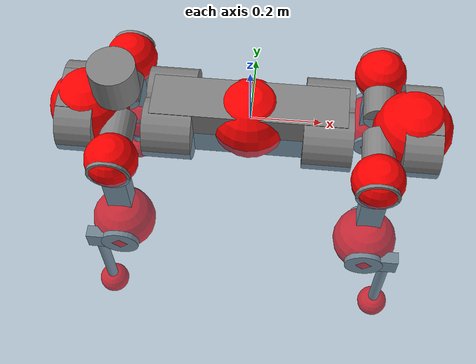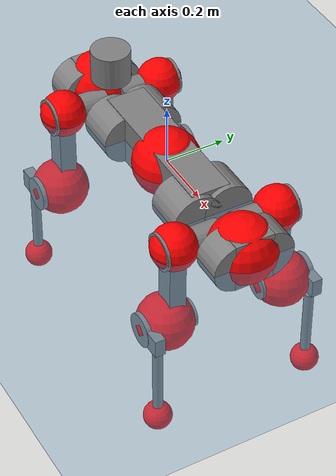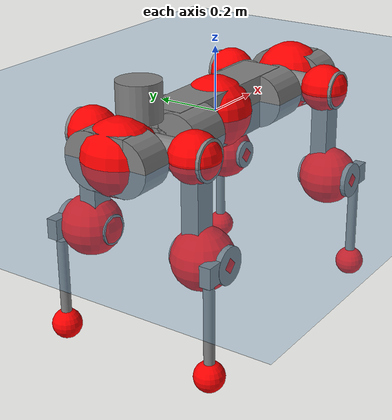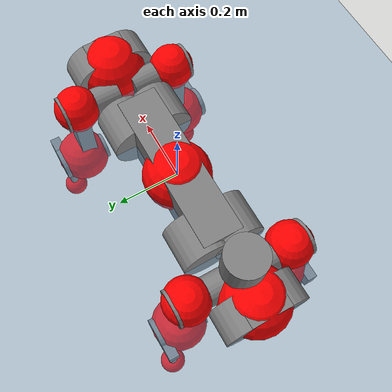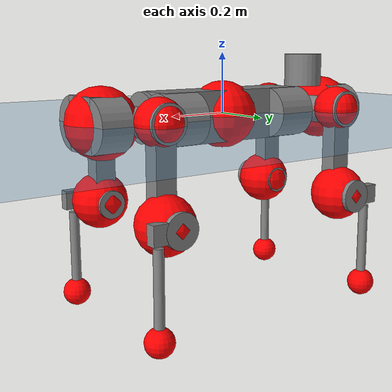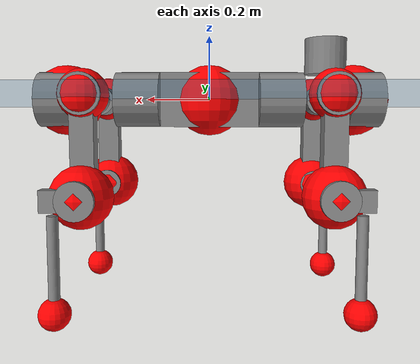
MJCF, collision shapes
<mujoco model="anymal_c">
  <compiler angle="radian" assetdir="assets" balanceinertia="true" inertiafromgeom="false"/>

  <option timestep="0.005" density="1.2" viscosity="2e-05"/>

  <size nkey="1"/>

  <visual>
    <quality shadowsize="8192"/>
    <map shadowclip="0.5"/>
  </visual>

  <default>
    <default class="/">
      <material specular="0" shininess="0.25"/>
      <geom contype="0" conaffinity="0" group="1" solref="-1000 -80"/>
      <site size="0.01 0.005 0.005" group="5"/>
      <general forcelimited="true" forcerange="-80 80" biastype="affine" gainprm="80" biasprm="0 -80 -2"/>
      <default class="anymal_c">
        <joint armature="0.01" damping="0.01" frictionloss="0.1"/>
        <default class="visual">
          <geom type="mesh" group="2"/>
          <default class="visual_zflip"/>
        </default>
        <default class="collision">
          <geom type="cylinder" group="3"/>
          <default class="foot">
            <geom size="0.03 0 0" type="sphere" condim="6" priority="1" friction="0.8 0.02 0.01" solimp="0.015 1 0.03"/>
          </default>
        </default>
      </default>
      <default class="reward_collision_sphere">
        <geom group="5" rgba="1 0 0 1"/>
      </default>
    </default>
  </default>

  <asset>
    <texture type="skybox" colorspace="auto" name="//unnamed_texture_0" builtin="gradient" rgb1="0.95 0.95 0.95" rgb2="0.95 0.95 0.95" width="100" height="600"/>
    <texture type="2d" colorspace="auto" name="texplane" builtin="checker" rgb1="0.345 0.575 0.748" rgb2="0.345 0.575 0.748" markrgb="1 1 1" width="512" height="512"/>
    <texture type="2d" colorspace="linear" name="base" file="base.png"/>
    <texture type="2d" colorspace="linear" name="top_shell" file="top_shell.png"/>
    <texture type="2d" colorspace="linear" name="bottom_shell" file="bottom_shell.png"/>
    <texture type="2d" colorspace="linear" name="remote" file="remote.png"/>
    <texture type="2d" colorspace="linear" name="hatch" file="hatch.png"/>
    <texture type="2d" colorspace="linear" name="handle" file="handle.png"/>
    <texture type="2d" colorspace="linear" name="face" file="face.png"/>
    <texture type="2d" colorspace="linear" name="battery" file="battery.png"/>
    <texture type="2d" colorspace="linear" name="lidar_cage" file="lidar_cage.png"/>
    <texture type="2d" colorspace="linear" name="depth_camera" file="depth_camera.png"/>
    <texture type="2d" colorspace="linear" name="wide_angle_camera" file="wide_angle_camera.png"/>
    <texture type="2d" colorspace="linear" name="lidar" file="lidar.png"/>
    <texture type="2d" colorspace="linear" name="drive" file="drive.png"/>
    <texture type="2d" colorspace="linear" name="hip_l" file="hip_l.png"/>
    <texture type="2d" colorspace="linear" name="shank_l" file="shank_l.png"/>
    <texture type="2d" colorspace="linear" name="foot" file="foot.png"/>
    <texture type="2d" colorspace="linear" name="thigh" file="thigh.png"/>
    <texture type="2d" colorspace="linear" name="shank_r" file="shank_r.png"/>
    <texture type="2d" colorspace="linear" name="hip_r" file="hip_r.png"/>
    <material name="MatPlane" class="/" texture="texplane" texuniform="true" texrepeat="2 2" specular="0.9" shininess="0.5"/>
    <material name="black_plastic" class="/" rgba="0.007 0.007 0.007 1"/>
    <material name="green" class="/" rgba="0.052 0.178 0.033 1"/>
    <material name="red" class="/" rgba="0.178 0.006 0.005 1"/>
    <material name="yellow" class="/" rgba="0.178 0.119 0.006 1"/>
    <material name="lwl" class="/" rgba="0.8 0.8 0.8 1"/>
    <material name="base" class="/" texture="base"/>
    <material name="top_shell" class="/" texture="top_shell"/>
    <material name="bottom_shell" class="/" texture="bottom_shell"/>
    <material name="hip_l" class="/" texture="hip_l"/>
    <material name="thigh" class="/" texture="thigh"/>
    <material name="shank_l" class="/" texture="shank_l"/>
    <material name="foot" class="/" texture="foot"/>
    <material name="hip_r" class="/" texture="hip_r"/>
    <material name="shank" class="/" texture="shank_r"/>
    <material name="hatch" class="/" texture="hatch"/>
    <material name="remote" class="/" texture="remote"/>
    <material name="handle" class="/" texture="handle"/>
    <material name="face" class="/" texture="face"/>
    <material name="depth_camera" class="/" texture="depth_camera"/>
    <material name="wide_angle_camera" class="/" texture="wide_angle_camera"/>
    <material name="battery" class="/" texture="battery"/>
    <material name="lidar_cage" class="/" texture="lidar_cage"/>
    <material name="lidar" class="/" texture="lidar"/>
    <material name="drive" class="/" texture="drive"/>
    <mesh name="base_0" class="/" file="base_0.obj"/>
    <mesh name="base_1" class="/" file="base_1.obj"/>
    <mesh name="base_2" class="/" file="base_2.obj"/>
    <mesh name="base_3" class="/" file="base_3.obj"/>
    <mesh name="base_4" class="/" file="base_4.obj"/>
    <mesh name="base_5" class="/" file="base_5.obj"/>
    <mesh name="top_shell" class="/" file="top_shell.obj"/>
    <mesh name="bottom_shell" class="/" file="bottom_shell.obj"/>
    <mesh name="remote" class="/" file="remote.obj"/>
    <mesh name="handle" class="/" file="handle.obj"/>
    <mesh name="face" class="/" file="face.obj"/>
    <mesh name="wide_angle_camera" class="/" file="wide_angle_camera.obj"/>
    <mesh name="depth_camera" class="/" file="depth_camera.obj"/>
    <mesh name="battery" class="/" file="battery.obj"/>
    <mesh name="lidar_cage" class="/" file="lidar_cage.obj"/>
    <mesh name="lidar" class="/" file="lidar.obj"/>
    <mesh name="drive" class="/" file="drive.obj"/>
    <mesh name="hip_l" class="/" file="hip_l.obj"/>
    <mesh name="thigh" class="/" file="thigh.obj"/>
    <mesh name="shank_l" class="/" file="shank_l.obj"/>
    <mesh name="foot" class="/" file="foot.obj"/>
    <mesh name="hip_r" class="/" file="hip_r.obj"/>
    <mesh name="hatch" class="/" file="hatch.obj"/>
    <mesh name="shank_r" class="/" file="shank_r.obj"/>
  </asset>

  <worldbody>
    <geom name="floor" class="/" size="100 100 0.125" type="plane" group="0" material="MatPlane"/>
    <light name="toplight_shadow" class="/" pos="0 0 5" dir="0.0990148 0.0990148 -0.990148" type="directional" ambient="0.04 0.04 0.04" diffuse="0.55 0.55 0.55" specular="0.12 0.12 0.12"/>
    <light name="toplight_fill" class="/" pos="0 0 5" dir="0.0990148 0.0990148 -0.990148" type="directional" castshadow="false" ambient="0.04 0.04 0.04" diffuse="0.3 0.3 0.3" specular="0.08 0.08 0.08"/>
    <body name="trunk" childclass="anymal_c" pos="-0.000723016 0.000328201 -0.00258906" quat="1 -0.000359682 -0.000290384 -7.46502e-05">
      <inertial pos="-0.000445217 -0.0028983 0.0509989" quat="0.500084 0.500003 0.500018 0.499895" mass="15.7024" diaginertia="0.702019 0.158664 0.265786"/>
      <joint name="//unnamed_joint_0" type="free" armature="0" damping="0" frictionloss="0"/>
      <geom name="//unnamed_geom_1" class="visual" material="green" mesh="base_0"/>
      <geom name="//unnamed_geom_2" class="visual" material="yellow" mesh="base_1"/>
      <geom name="//unnamed_geom_3" class="visual" material="red" mesh="base_2"/>
      <geom name="//unnamed_geom_4" class="visual" material="black_plastic" mesh="base_3"/>
      <geom name="//unnamed_geom_5" class="visual" material="lwl" mesh="base_4"/>
      <geom name="//unnamed_geom_6" class="visual" material="base" mesh="base_5"/>
      <geom name="trunk_1" class="collision" size="0.270366 0.0652608 0.0839068" type="box"/>
      <geom name="trunk_2" class="collision" size="0.0839068 0.0675916" pos="0.219816 0.0528862 0" quat="0.707107 0 0.707107 0"/>
      <geom name="trunk_3" class="collision" size="0.0839068 0.0675916" pos="-0.219816 0.0528862 0" quat="0.707107 0 0.707107 0"/>
      <geom name="trunk_4" class="collision" size="0.0839068 0.0675916" pos="0.219816 -0.0528862 0" quat="0.707107 0 0.707107 0"/>
      <geom name="trunk_5" class="collision" size="0.0839068 0.0675916" pos="-0.219816 -0.0528862 0" quat="0.707107 0 0.707107 0"/>
      <geom name="//unnamed_geom_12" class="visual" material="top_shell" mesh="top_shell"/>
      <geom name="//unnamed_geom_13" class="visual" material="bottom_shell" mesh="bottom_shell"/>
      <geom name="//unnamed_geom_14" class="visual" material="remote" mesh="remote"/>
      <geom name="//unnamed_geom_15" class="visual" material="handle" mesh="handle"/>
      <geom name="//unnamed_geom_16" class="visual" pos="0.418913 0 0" quat="1 0 0 0" material="face" mesh="face"/>
      <geom name="trunk_6" class="collision" size="0.0512764 0.0652608 0.0839068" pos="0.474499 0 0" type="box"/>
      <geom name="//unnamed_geom_18" class="collision" size="0.0839068 0.0512764" pos="0.474499 0.0528862 0" quat="0.707107 0 0.707107 0"/>
      <geom name="//unnamed_geom_19" class="collision" size="0.0839068 0.0512764" pos="0.474499 -0.0528862 0" quat="0.707107 0 0.707107 0"/>
      <geom name="//unnamed_geom_20" class="visual" pos="0.466566 0 -0.0302499" quat="0.965926 0 0.258819 0" material="depth_camera" mesh="depth_camera"/>
      <geom name="//unnamed_geom_21" class="visual" pos="0.518462 0 0.01543" material="wide_angle_camera" mesh="wide_angle_camera"/>
      <geom name="//unnamed_geom_22" class="visual_zflip" pos="-0.418913 0 0" quat="0 0 0 1" material="face" mesh="face"/>
      <geom name="trunk_7" class="collision" size="0.0512764 0.0652608 0.0839068" pos="-0.474499 0 0" quat="0 0 0 1" type="box"/>
      <geom name="//unnamed_geom_24" class="collision" size="0.0839068 0.0512764" pos="-0.474499 -0.0528862 0" quat="0 -0.707107 0 0.707107"/>
      <geom name="//unnamed_geom_25" class="collision" size="0.0839068 0.0512764" pos="-0.474499 0.0528862 0" quat="0 -0.707107 0 0.707107"/>
      <geom name="//unnamed_geom_26" class="visual" pos="-0.466566 0 -0.0302499" quat="0 -0.258819 0 0.965926" material="depth_camera" mesh="depth_camera"/>
      <geom name="//unnamed_geom_27" class="visual_zflip" pos="-0.518462 0 0.01543" quat="0 0 0 1" material="wide_angle_camera" mesh="wide_angle_camera"/>
      <geom name="//unnamed_geom_28" class="visual" material="battery" mesh="battery"/>
      <geom name="//unnamed_geom_29" class="visual" pos="0 0.0544199 0.02979" quat="0.683013 -0.183013 0.183013 0.683013" material="depth_camera" mesh="depth_camera"/>
      <geom name="//unnamed_geom_30" class="visual" pos="0 -0.0544199 0.02979" quat="0.683013 0.183013 0.183013 -0.683013" material="depth_camera" mesh="depth_camera"/>
      <geom name="//unnamed_geom_31" class="visual" pos="-0.367875 0 0.0757585" quat="1 0 0 0" material="lidar_cage" mesh="lidar_cage"/>
      <geom name="trunk_8" class="collision" size="0.0652608 0.0559379" pos="-0.367875 0 0.137602"/>
      <geom name="//unnamed_geom_33" class="visual" pos="-0.367875 -0.000100234 0.14657" quat="0.707107 0 0 -0.707107" material="lidar" mesh="lidar"/>
      <geom name="//unnamed_geom_34" class="visual" pos="0.303093 0.0786716 -4.74742e-09" quat="0.258819 0.965926 0 0" material="drive" mesh="drive"/>
      <geom name="//unnamed_geom_35" class="visual" pos="0.303093 -0.0786716 4.74742e-09" quat="0.258819 -0.965926 0 0" material="drive" mesh="drive"/>
      <geom name="//unnamed_geom_36" class="visual" pos="-0.303093 0.0786716 4.74742e-09" quat="0 0 0.965926 -0.258819" material="drive" mesh="drive"/>
      <geom name="//unnamed_geom_37" class="visual" pos="-0.303093 -0.0786716 -4.74742e-09" quat="0 0 -0.965926 -0.258819" material="drive" mesh="drive"/>
      <geom name="//unnamed_geom_38" class="visual" pos="0.117235 0 0.0752432" quat="1 0 0 0" material="hatch" mesh="hatch"/>
      <geom name="//unnamed_geom_39" class="reward_collision_sphere" size="0.111876"/>
      <geom name="//unnamed_geom_40" class="reward_collision_sphere" size="0.111876" pos="0.454791 0 0"/>
      <geom name="//unnamed_geom_41" class="reward_collision_sphere" size="0.111876" pos="-0.454791 0 0"/>
      <site name="imu" pos="0.240075 0.0116209 0.0614895" size="0.00932298"/>
      <camera name="track" pos="0 -1.51103 0" quat="0.707107 0.707107 0 0" mode="trackcom"/>
      <camera name="ego_camera" pos="0.454791 0 -0.0412291" quat="-0.5 -0.5 0.5 0.5"/>
      <body name="LF_HIP" pos="0.302563 0.0795578 0.00039171" quat="0.259663 0.965699 0.000169466 -0.000127248">
        <inertial pos="0.0600218 -0.0128231 -0.0078243" quat="-0.120505 0.710731 -0.143007 0.678151" mass="2.17558" diaginertia="0.00596774 0.00120155 0.00383082"/>
        <joint name="LF_HAA" pos="0 0 0" axis="0.999865 -0.0149244 0.00693692" range="-0.710705 0.525091" armature="0.0105011" damping="0.000264705" frictionloss="0.0978882"/>
        <geom name="//unnamed_geom_42" class="visual" pos="0 -0.000279269 4.58698e-05" quat="0.258819 -0.965926 0 0" material="hip_l" mesh="hip_l"/>
        <geom name="//unnamed_geom_43" class="visual" pos="0.0605378 -0.070093 -0.0425038" quat="0.183013 -0.683013 0.683013 0.183013" material="drive" mesh="drive"/>
        <geom name="//unnamed_geom_44" class="collision" size="0.0466149 0.0652608" pos="0.0605378 -0.00903584 -0.00711718" quat="-0.353553 -0.612372 0.612372 -0.353553"/>
        <body name="LF_THIGH" pos="0.0606216 -0.0546048 -0.0446946" quat="0.182547 -0.683285 0.682917 0.182821">
          <inertial pos="0.0327063 0.000348912 -0.250526" quat="0.993088 -0.00574222 -0.0820667 0.0837166" mass="2.54897" diaginertia="0.0307198 0.00733835 0.00491381"/>
          <joint name="LF_HFE" pos="0 0 0" axis="0.999893 -0.0145572 -0.00109143" range="-3.13768 3.11778" armature="0.00887445" damping="0.00888151" frictionloss="0.0804212"/>
          <geom name="//unnamed_geom_45" class="visual" pos="0.00507608 7.99871e-06 0" quat="0.707107 0 0 -0.707107" material="thigh" mesh="thigh"/>
          <geom name="//unnamed_geom_46" class="collision" size="0.0605993 0.0372919" pos="0.0404259 0 0" quat="0.5 0.5 -0.5 -0.5"/>
          <geom name="//unnamed_geom_47" class="collision" size="0.0349612 0.0279689 0.131747" pos="0.0303194 0 -0.145656" quat="0.707107 0 0 -0.707107" type="box"/>
          <geom name="//unnamed_geom_48" class="visual" pos="0.101368 0 -0.293758" quat="1 0 0 0" material="drive" mesh="drive"/>
          <geom name="//unnamed_geom_49" class="collision" size="0.0466149 0.0652608" pos="0.0306226 0 -0.293758" quat="0.707107 0 0.707107 0"/>
          <geom name="//unnamed_geom_50" class="reward_collision_sphere" size="0.0745838" pos="0.0252662 0 0"/>
          <body name="LF_SHANK" pos="0.104799 -0.00335272 -0.296344" quat="0.999999 -0.00101659 0.000121014 0.00102881">
            <inertial pos="0.0062614 -0.0461435 -0.0825846" quat="0.992871 -0.116781 -0.00256591 -0.0237265" mass="0.464808" diaginertia="0.0104448 0.00226123 0.00128409"/>
            <joint name="LF_KFE" pos="0 0 0" axis="0.999999 0.000253575 0.00123698" range="-3.19053 3.15116" armature="0.010122" damping="0" frictionloss="0.104159"/>
            <geom name="//unnamed_geom_51" class="visual" pos="0.0016552 0.0088256 0" quat="0.707107 0 0 -0.707107" material="shank_l" mesh="shank_l"/>
            <geom name="LF_kfe_act" class="collision" size="0.0559379 0.018646" pos="0.0202129 0 0" quat="0.5 0.5 -0.5 -0.5"/>
            <geom name="//unnamed_geom_53" class="collision" size="0.0536062 0.031465 0.0177137" pos="0.0202129 -0.0434415 0" quat="0.5 0.5 -0.5 -0.5" type="box"/>
            <geom name="//unnamed_geom_54" class="visual" pos="0.0131885 -0.0636036 -0.348355" quat="0.382683 0 0 -0.92388" material="foot" mesh="foot"/>
            <geom name="LF_calf" class="collision" size="0.0163152 0.131689" pos="0.0131889 -0.0664477 -0.174178" quat="0.707107 0 0 -0.707107"/>
            <geom name="LF_foot" class="foot" size="0.0286882" pos="0.0131889 -0.0664477 -0.325164" quat="0.707107 0 0 -0.707107"/>
            <geom name="//unnamed_geom_57" class="reward_collision_sphere" size="0.0932298" pos="-0.0505323 0 0"/>
            <geom name="//unnamed_geom_58" class="reward_collision_sphere" size="0.0466149" pos="0.0131889 -0.0664477 -0.325164"/>
            <site name="LF_foot" class="foot" pos="0.0131889 -0.0664477 -0.325164" quat="0.707107 0 0 -0.707107" size="0.00932298"/>
          </body>
        </body>
      </body>
      <body name="RF_HIP" pos="0.301475 -0.0801681 -0.000871091" quat="0.258812 -0.965928 -1.84981e-06 9.74614e-06">
        <inertial pos="0.0601426 0.0129512 -0.00932209" quat="0.137833 0.679291 0.127534 0.709437" mass="2.33345" diaginertia="0.00626108 0.00127754 0.00393785"/>
        <joint name="RF_HAA" pos="0 0 0" axis="0.999988 -0.00459761 0.00138494" range="-0.545994 0.702066" armature="0.00807722" damping="0.00789355" frictionloss="0.0804421"/>
        <geom name="//unnamed_geom_59" class="visual" pos="0 0.000279267 4.58696e-05" quat="0.258819 0.965926 0 0" material="hip_r" mesh="hip_r"/>
        <geom name="//unnamed_geom_60" class="visual" pos="0.0605377 0.070093 -0.0425038" quat="0.183013 0.683013 0.683013 -0.183013" material="drive" mesh="drive"/>
        <geom name="//unnamed_geom_61" class="collision" size="0.0466149 0.0652608" pos="0.0605378 0.00903584 -0.00711718" quat="-0.353553 0.612372 0.612372 0.353553"/>
        <body name="RF_THIGH" pos="0.0599091 0.0576095 -0.0452701" quat="0.183341 0.682944 0.683011 -0.18295">
          <inertial pos="0.0314685 -0.00116652 -0.252063" quat="0.99316 0.00823837 -0.0769807 0.087407" mass="2.32564" diaginertia="0.030497 0.0073145 0.00478112"/>
          <joint name="RF_HFE" pos="0 0 0" axis="0.999949 -0.0101068 -2.35391e-05" stiffness="0.0051973" range="-3.09628 3.19082" armature="0.00934521" damping="0" frictionloss="0.102101"/>
          <geom name="//unnamed_geom_62" class="visual" pos="0.00507608 7.99871e-06 0" quat="0.707107 0 0 -0.707107" material="thigh" mesh="thigh"/>
          <geom name="//unnamed_geom_63" class="collision" size="0.0605993 0.0372919" pos="0.0404259 0 0" quat="0.5 0.5 0.5 0.5"/>
          <geom name="//unnamed_geom_64" class="collision" size="0.0349612 0.0279689 0.131747" pos="0.0303194 0 -0.145656" quat="0.707107 0 0 0.707107" type="box"/>
          <geom name="//unnamed_geom_65" class="visual" pos="0.101368 0 -0.293758" quat="1 0 0 0" material="drive" mesh="drive"/>
          <geom name="//unnamed_geom_66" class="collision" size="0.0466149 0.0652608" pos="0.0306226 0 -0.293758" quat="0.707107 0 0.707107 0"/>
          <geom name="//unnamed_geom_67" class="reward_collision_sphere" size="0.0745838" pos="0.0252662 0 0"/>
          <body name="RF_SHANK" pos="0.103548 -0.00219547 -0.2927" quat="1 -0.000154609 -0.000170489 7.40912e-05">
            <inertial pos="0.00545104 0.0464669 -0.080295" quat="0.992268 0.119941 0.00665982 0.0312217" mass="0.484223" diaginertia="0.0104202 0.00219919 0.00130202"/>
            <joint name="RF_KFE" pos="0 0 0" axis="0.999995 -0.00258852 -0.00163663" range="-3.17293 3.1821" armature="0.00929897" damping="0.00314471" frictionloss="0.0817772"/>
            <geom name="//unnamed_geom_68" class="visual" pos="0.00165519 -0.00882558 0" quat="0.707107 0 0 0.707107" material="shank" mesh="shank_r"/>
            <geom name="RF_kfe_act" class="collision" size="0.0559379 0.018646" pos="0.0202129 0 0" quat="0.5 0.5 0.5 0.5"/>
            <geom name="//unnamed_geom_70" class="collision" size="0.0536062 0.031465 0.0177137" pos="0.0202129 0.0434415 0" quat="0.5 0.5 0.5 0.5" type="box"/>
            <geom name="//unnamed_geom_71" class="visual" pos="0.0131893 0.0636036 -0.348355" quat="0.382683 0 0 0.92388" material="foot" mesh="foot"/>
            <geom name="RF_calf" class="collision" size="0.0163152 0.131689" pos="0.0131889 0.0664477 -0.174178" quat="0.707107 0 0 0.707107"/>
            <geom name="RF_foot" class="foot" size="0.026739" pos="0.0131889 0.0664477 -0.325164" quat="0.707107 0 0 0.707107"/>
            <geom name="//unnamed_geom_74" class="reward_collision_sphere" size="0.0932298" pos="-0.0505323 0 0"/>
            <geom name="//unnamed_geom_75" class="reward_collision_sphere" size="0.0466149" pos="0.0131889 0.0664477 -0.325164"/>
            <site name="RF_foot" class="foot" pos="0.0131889 0.0664477 -0.325164" quat="0.707107 0 0 0.707107" size="0.00932298"/>
          </body>
        </body>
      </body>
      <body name="LH_HIP" pos="-0.305107 0.0799593 0.000555536" quat="-9.84671e-05 7.33959e-05 0.965939 -0.258768">
        <inertial pos="0.0586777 0.0139934 -0.00876191" quat="0.128211 0.678924 0.119708 0.712948" mass="2.24834" diaginertia="0.00593628 0.00120416 0.00356665"/>
        <joint name="LH_HAA" pos="0 0 0" axis="0.999993 -0.00154663 -0.00349058" range="-0.484332 0.684758" armature="0.00791126" damping="0.00159606" frictionloss="0.0928131"/>
        <geom name="//unnamed_geom_76" class="visual" pos="0 0.000279267 4.58696e-05" quat="-0.258819 -0.965926 0 0" material="hip_r" mesh="hip_r"/>
        <geom name="//unnamed_geom_77" class="visual" pos="0.0605377 0.070093 -0.0425038" quat="0.183013 0.683013 0.683013 -0.183013" material="drive" mesh="drive"/>
        <geom name="//unnamed_geom_78" class="collision" size="0.0466149 0.0652608" pos="0.0605378 0.00903584 -0.00711718" quat="-0.353553 0.612372 0.612372 0.353553"/>
        <body name="LH_THIGH" pos="0.0573329 0.052643 -0.0434139" quat="0.182998 0.683066 0.682995 -0.182897">
          <inertial pos="0.0311697 0.00267556 -0.251931" quat="0.992626 -0.00612527 -0.0833987 0.0877512" mass="2.47712" diaginertia="0.031779 0.00713552 0.00485006"/>
          <joint name="LH_HFE" pos="0 0 0" axis="0.999926 -0.000152237 -0.0121784" stiffness="0.00609441" range="-3.14023 3.1578" armature="0.00854819" damping="0.00201292" frictionloss="0.0951315"/>
          <geom name="//unnamed_geom_79" class="visual" pos="0.00507608 7.99871e-06 0" quat="0.707107 0 0 -0.707107" material="thigh" mesh="thigh"/>
          <geom name="//unnamed_geom_80" class="collision" size="0.0605993 0.0372919" pos="0.0404259 0 0" quat="0.5 0.5 -0.5 -0.5"/>
          <geom name="//unnamed_geom_81" class="collision" size="0.0349612 0.0279689 0.131747" pos="0.0303194 0 -0.145656" quat="0.707107 0 0 -0.707107" type="box"/>
          <geom name="//unnamed_geom_82" class="visual" pos="0.101368 0 -0.293758" quat="1 0 0 0" material="drive" mesh="drive"/>
          <geom name="//unnamed_geom_83" class="collision" size="0.0466149 0.0652608" pos="0.0306226 0 -0.293758" quat="0.707107 0 0.707107 0"/>
          <geom name="//unnamed_geom_84" class="reward_collision_sphere" size="0.0745838" pos="0.0252662 0 0"/>
          <body name="LH_SHANK" pos="0.0986178 -0.000654123 -0.294956" quat="1 0.000519513 0.000384515 -1.32803e-05">
            <inertial pos="0.00561617 0.0459794 -0.0834441" quat="0.992789 0.118625 0.00305598 0.016974" mass="0.478527" diaginertia="0.0106887 0.00225005 0.0012681"/>
            <joint name="LH_KFE" pos="0 0 0" axis="0.999777 0.0175929 -0.01166" range="-3.15607 3.13826" armature="0.00814356" damping="0.00587777" frictionloss="0.104624"/>
            <geom name="//unnamed_geom_85" class="visual" pos="0.00165519 -0.00882558 0" quat="-0.707107 0 0 -0.707107" material="shank" mesh="shank_r"/>
            <geom name="LH_kfe_act" class="collision" size="0.0559379 0.018646" pos="0.0202129 0 0" quat="0.5 0.5 -0.5 -0.5"/>
            <geom name="//unnamed_geom_87" class="collision" size="0.0536062 0.031465 0.0177137" pos="0.0202129 0.0434415 0" quat="0.5 0.5 -0.5 -0.5" type="box"/>
            <geom name="//unnamed_geom_88" class="visual" pos="0.0131893 0.0636036 -0.348355" quat="-0.382683 0 0 -0.92388" material="foot" mesh="foot"/>
            <geom name="LH_calf" class="collision" size="0.0163152 0.131689" pos="0.0131889 0.0664477 -0.174178" quat="0.707107 0 0 -0.707107"/>
            <geom name="LH_foot" class="foot" size="0.0326001" pos="0.0131889 0.0664477 -0.325164" quat="0.707107 0 0 -0.707107"/>
            <geom name="//unnamed_geom_91" class="reward_collision_sphere" size="0.0932298" pos="-0.0505323 0 0"/>
            <geom name="//unnamed_geom_92" class="reward_collision_sphere" size="0.0466149" pos="0.0131889 0.0664477 -0.325164"/>
            <site name="LH_foot" class="foot" pos="0.0131889 0.0664477 -0.325164" quat="0.707107 0 0 -0.707107" size="0.00932298"/>
          </body>
        </body>
      </body>
      <body name="RH_HIP" pos="-0.302837 -0.0817086 -0.000490023" quat="0.000269021 -0.000232534 -0.96626 -0.257568">
        <inertial pos="0.0546218 -0.0121759 -0.00600443" quat="-0.129698 0.709615 -0.135362 0.679192" mass="2.20724" diaginertia="0.00606716 0.00118458 0.00363547"/>
        <joint name="RH_HAA" pos="0 0 0" axis="0.999998 -0.000705075 0.00188658" range="-0.779532 0.539846" armature="0.00926503" damping="0" frictionloss="0.0928116"/>
        <geom name="//unnamed_geom_93" class="visual" pos="0 -0.000279269 4.58698e-05" quat="-0.258819 0.965926 0 0" material="hip_l" mesh="hip_l"/>
        <geom name="//unnamed_geom_94" class="visual" pos="0.0605378 -0.070093 -0.0425038" quat="-0.183013 0.683013 -0.683013 -0.183013" material="drive" mesh="drive"/>
        <geom name="//unnamed_geom_95" class="collision" size="0.0466149 0.0652608" pos="0.0605378 -0.00903584 -0.00711718" quat="0.353553 0.612372 -0.612372 0.353553"/>
        <body name="RH_THIGH" pos="0.0598039 -0.0562376 -0.0416105" quat="-0.183328 0.683024 -0.682982 -0.18277">
          <inertial pos="0.0341844 0.00062009 -0.254119" quat="0.993158 -0.00510311 -0.0806981 0.0842515" mass="2.35088" diaginertia="0.0299848 0.0071896 0.00469416"/>
          <joint name="RH_HFE" pos="0 0 0" axis="0.999939 -0.0104438 0.00359254" stiffness="0.00224451" range="-3.14661 3.14386" armature="0.00891243" damping="0.00563117" frictionloss="0.0935675"/>
          <geom name="//unnamed_geom_96" class="visual" pos="0.00507608 7.99871e-06 0" quat="0.707107 0 0 -0.707107" material="thigh" mesh="thigh"/>
          <geom name="//unnamed_geom_97" class="collision" size="0.0605993 0.0372919" pos="0.0404259 0 0" quat="0.5 0.5 0.5 0.5"/>
          <geom name="//unnamed_geom_98" class="collision" size="0.0349612 0.0279689 0.131747" pos="0.0303194 0 -0.145656" quat="0.707107 0 0 0.707107" type="box"/>
          <geom name="//unnamed_geom_99" class="visual" pos="0.101368 0 -0.293758" quat="1 0 0 0" material="drive" mesh="drive"/>
          <geom name="//unnamed_geom_100" class="collision" size="0.0466149 0.0652608" pos="0.0306226 0 -0.293758" quat="0.707107 0 0.707107 0"/>
          <geom name="//unnamed_geom_101" class="reward_collision_sphere" size="0.0745838" pos="0.0252662 0 0"/>
          <body name="RH_SHANK" pos="0.0987103 0.00142426 -0.293473" quat="1 -0.000576871 0.0001075 -0.000242211">
            <inertial pos="0.00497484 -0.0463578 -0.0834023" quat="0.994388 -0.10428 -0.000122793 -0.017826" mass="0.467663" diaginertia="0.0103757 0.00233718 0.00129542"/>
            <joint name="RH_KFE" pos="0 0 0" axis="0.999984 0.00542215 0.00149854" stiffness="0.00893002" range="-3.1085 3.13381" armature="0.0081792" damping="0.00685525" frictionloss="0.0926433"/>
            <geom name="//unnamed_geom_102" class="visual" pos="0.0016552 0.0088256 0" quat="0.707107 0 0 -0.707107" material="shank_l" mesh="shank_l"/>
            <geom name="RH_kfe_act" class="collision" size="0.0559379 0.018646" pos="0.0202129 0 0" quat="0.5 0.5 0.5 0.5"/>
            <geom name="//unnamed_geom_104" class="collision" size="0.0536062 0.031465 0.0177137" pos="0.0202129 -0.0434415 0" quat="0.5 0.5 0.5 0.5" type="box"/>
            <geom name="//unnamed_geom_105" class="visual" pos="0.0131885 -0.0636036 -0.348355" quat="0.382683 0 0 -0.92388" material="foot" mesh="foot"/>
            <geom name="RH_calf" class="collision" size="0.0163152 0.131689" pos="0.0131889 -0.0664477 -0.174178" quat="0.707107 0 0 0.707107"/>
            <geom name="RH_foot" class="foot" size="0.023232" pos="0.0131889 -0.0664477 -0.325164" quat="0.707107 0 0 0.707107"/>
            <geom name="//unnamed_geom_108" class="reward_collision_sphere" size="0.0932298" pos="-0.0505323 0 0"/>
            <geom name="//unnamed_geom_109" class="reward_collision_sphere" size="0.0466149" pos="0.0131889 -0.0664477 -0.325164"/>
            <site name="RH_foot" class="foot" pos="0.0131889 -0.0664477 -0.325164" quat="0.707107 0 0 0.707107" size="0.00932298"/>
          </body>
        </body>
      </body>
    </body>
  </worldbody>

  <contact>
    <pair class="/" geom1="floor" geom2="LF_foot" name="//unnamed_contact_0"/>
    <pair class="/" geom1="floor" geom2="RF_foot" name="//unnamed_contact_1"/>
    <pair class="/" geom1="floor" geom2="LH_foot" name="//unnamed_contact_2"/>
    <pair class="/" geom1="floor" geom2="RH_foot" name="//unnamed_contact_3"/>
  </contact>

  <actuator>
    <general name="LF_HAA" class="/" joint="LF_HAA" forcerange="-78.4106 78.4106" gainprm="76.6817" biasprm="0 -76.6817 -1.77357"/>
    <general name="LF_HFE" class="/" joint="LF_HFE" forcerange="-69.3548 69.3548" gainprm="76.6817" biasprm="0 -76.6817 -1.77357"/>
    <general name="LF_KFE" class="/" joint="LF_KFE" forcerange="-76.5108 76.5108" gainprm="76.6817" biasprm="0 -76.6817 -1.77357"/>
    <general name="RF_HAA" class="/" joint="RF_HAA" forcerange="-69.2071 69.2071" gainprm="76.6817" biasprm="0 -76.6817 -1.77357"/>
    <general name="RF_HFE" class="/" joint="RF_HFE" forcerange="-81.0986 81.0986" gainprm="76.6817" biasprm="0 -76.6817 -1.77357"/>
    <general name="RF_KFE" class="/" joint="RF_KFE" forcerange="-67.1277 67.1277" gainprm="76.6817" biasprm="0 -76.6817 -1.77357"/>
    <general name="LH_HAA" class="/" joint="LH_HAA" forcerange="-74.8661 74.8661" gainprm="76.6817" biasprm="0 -76.6817 -1.77357"/>
    <general name="LH_HFE" class="/" joint="LH_HFE" forcerange="-67.2561 67.2561" gainprm="76.6817" biasprm="0 -76.6817 -1.77357"/>
    <general name="LH_KFE" class="/" joint="LH_KFE" forcerange="-77.3097 77.3097" gainprm="76.6817" biasprm="0 -76.6817 -1.77357"/>
    <general name="RH_HAA" class="/" joint="RH_HAA" forcerange="-75.2914 75.2914" gainprm="76.6817" biasprm="0 -76.6817 -1.77357"/>
    <general name="RH_HFE" class="/" joint="RH_HFE" forcerange="-68.2748 68.2748" gainprm="76.6817" biasprm="0 -76.6817 -1.77357"/>
    <general name="RH_KFE" class="/" joint="RH_KFE" forcerange="-82.807 82.807" gainprm="76.6817" biasprm="0 -76.6817 -1.77357"/>
  </actuator>

  <sensor>
    <gyro site="imu" name="imu_angular_velocity"/>
    <velocimeter site="imu" name="imu_linear_velocity"/>
    <framelinvel objtype="site" objname="LF_foot" name="LF_foot_global_linear_velocity"/>
    <framelinvel objtype="site" objname="RF_foot" name="RF_foot_global_linear_velocity"/>
    <framelinvel objtype="site" objname="LH_foot" name="LH_foot_global_linear_velocity"/>
    <framelinvel objtype="site" objname="RH_foot" name="RH_foot_global_linear_velocity"/>
  </sensor>

  <keyframe>
    <key name="home" qpos="0 0 0.55 1 0 0 0 0 0.4 -0.8 0 -0.4 0.8 0 -0.4 0.8 0 0.4 -0.8"/>
  </keyframe>
</mujoco>
